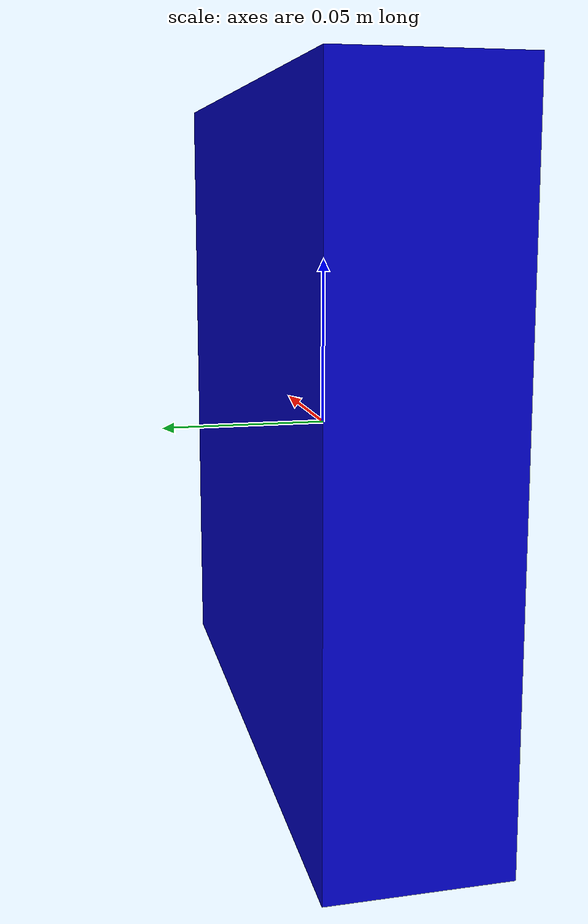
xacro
<robot xmlns:xacro="http://www.ros.org/wiki/xacro" name="lcurtain">

  <material name="blue">
    <color rgba="0 0 0.8 1"/>
  </material>

  <material name="red">
    <color rgba="0.8 0 0 1"/>
  </material>

  <material name="green">
    <color rgba="0 0.8 0 1"/>
  </material>

  <material name="yellow">
    <color rgba="0.8 0.8 0 1"/>
  </material>

  <material name="black">
    <color rgba="0.1 0.1 0.1 1"/>
  </material>

  <xacro:arg name="lc_id" default="blueversion"/>
  <!-- for condition evaluation -->
  <xacro:property name="lc_id" value="$(arg lc_id)"/>

  <xacro:if value="${lc_id == 'blueversion'}">
    <link name="$(arg lc_id)_base_link">
      <visual>
        <geometry>
          <box size="0.2 0.2 0.05"/>
        </geometry>
        <material name="blue"/>
      </visual>
      <inertial>
        <mass value="1"/>
        <origin xyz = "0 0 0" rpy="0 0 0"/>
        <inertia ixx="1e-6" ixy="0" ixz="0" iyy="1e-6" iyz="0" izz="1e-6"/>
      </inertial>
    </link>
    <gazebo reference="$(arg lc_id)_base_link">
      <material>Gazebo/Blue</material>
    </gazebo>
  </xacro:if>

  <xacro:if value="${lc_id == 'redversion'}">
    <link name="$(arg lc_id)_base_link">
      <visual>
        <geometry>
          <box size="0.2 0.2 0.05"/>
        </geometry>
        <material name="red"/>
      </visual>
      <inertial>
        <mass value="1"/>
        <origin xyz = "0 0 0" rpy="0 0 0"/>
        <inertia ixx="1e-6" ixy="0" ixz="0" iyy="1e-6" iyz="0" izz="1e-6"/>
      </inertial>
    </link>
    <gazebo reference="$(arg lc_id)_base_link">
      <material>Gazebo/Red</material>
    </gazebo>
  </xacro:if>

  <xacro:if value="${lc_id == 'greenversion'}">
    <link name="$(arg lc_id)_base_link">
      <visual>
        <geometry>
          <box size="0.2 0.2 0.05"/>
        </geometry>
        <material name="green"/>
      </visual>
      <inertial>
        <mass value="1"/>
        <origin xyz = "0 0 0" rpy="0 0 0"/>
        <inertia ixx="1e-6" ixy="0" ixz="0" iyy="1e-6" iyz="0" izz="1e-6"/>
      </inertial>
    </link>
    <gazebo reference="$(arg lc_id)_base_link">
      <material>Gazebo/Green</material>
    </gazebo>
  </xacro:if>

  <xacro:if value="${lc_id == 'yellowversion'}">
    <link name="$(arg lc_id)_base_link">
      <visual>
        <geometry>
          <box size="0.2 0.2 0.05"/>
        </geometry>
        <material name="yellow"/>
      </visual>
      <inertial>
        <mass value="1"/>
        <origin xyz = "0 0 0" rpy="0 0 0"/>
        <inertia ixx="1e-6" ixy="0" ixz="0" iyy="1e-6" iyz="0" izz="1e-6"/>
      </inertial>
    </link>
    <gazebo reference="$(arg lc_id)_base_link">
      <material>Gazebo/Yellow</material>
    </gazebo>
  </xacro:if>

  <link name="$(arg lc_id)_ir_optical"/>
  <joint name="$(arg lc_id)_ir_joint" type="fixed">
    <origin xyz="0 0 0" rpy="1.57 0 0"/>
    <parent link="$(arg lc_id)_ir_optical"/>
    <child link="$(arg lc_id)_base_link"/>
  </joint>

</robot>
